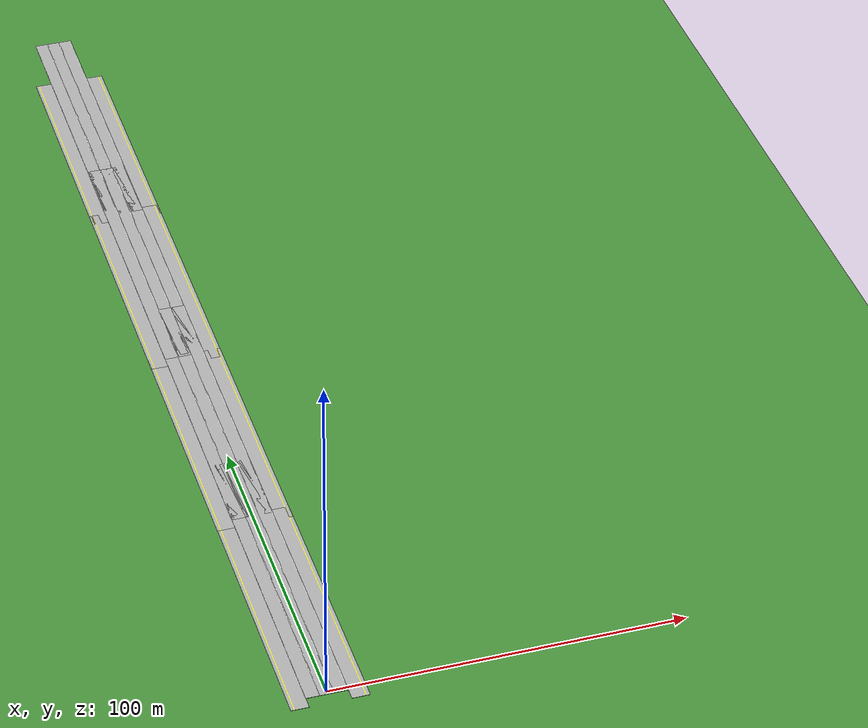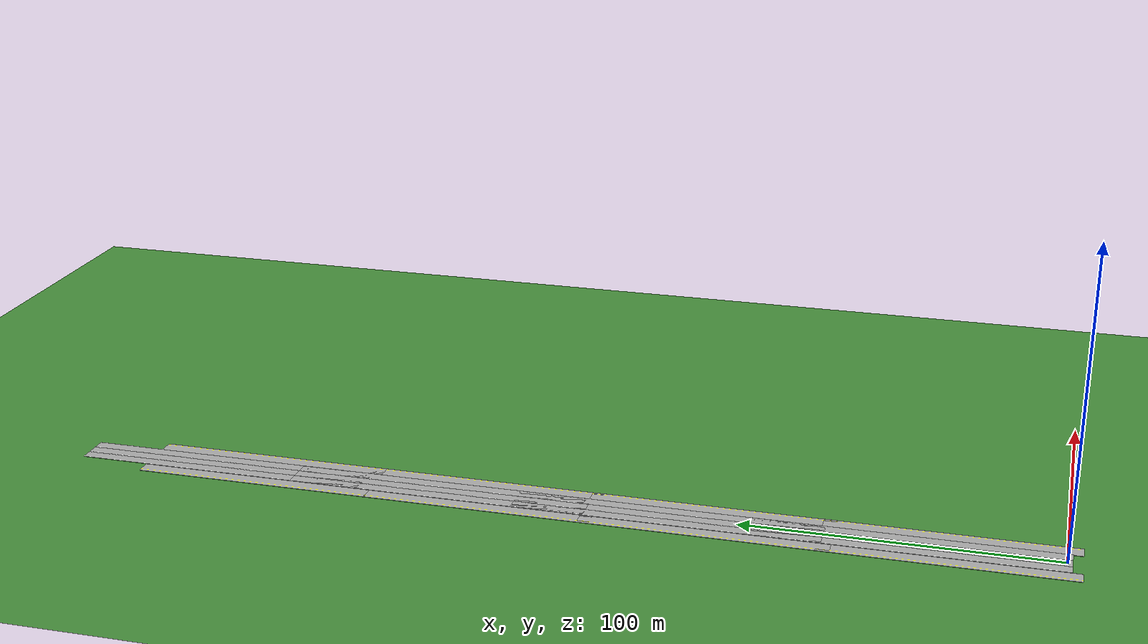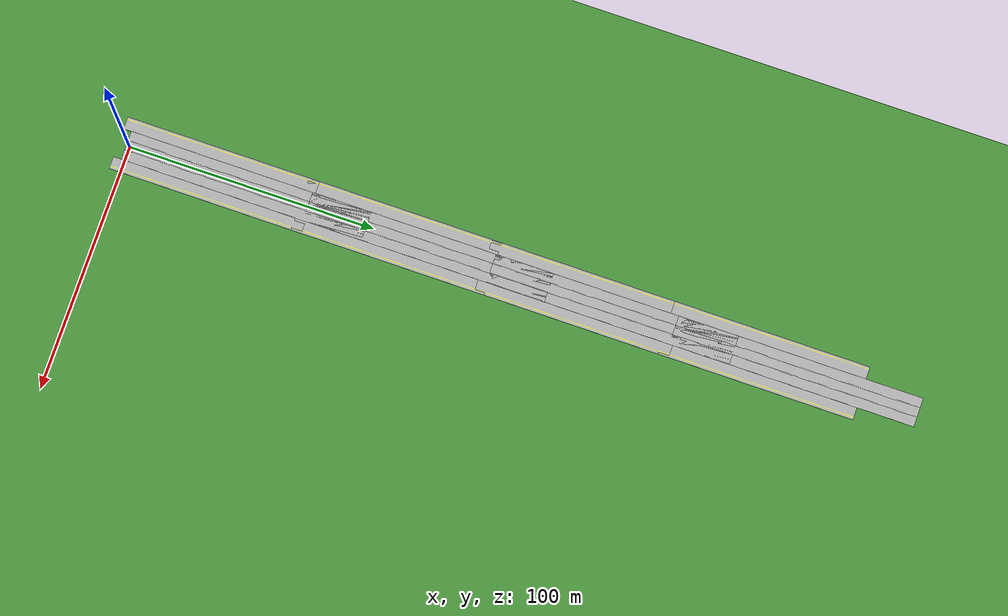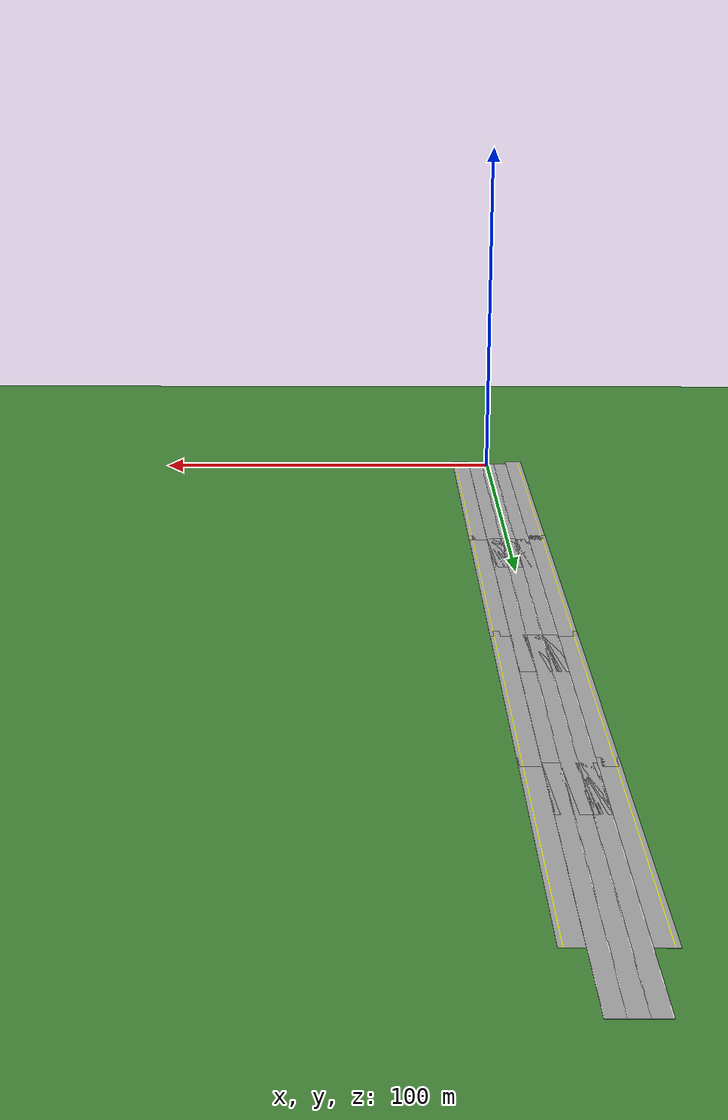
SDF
<sdf version="1.6">
 <world name="default">
  <model name="ground_plane">
   <static>1</static>
   <link name="link">
    <collision name="collision">
     <geometry><plane><normal>0 0 1</normal><size>100 100</size></plane></geometry>
     <surface><friction><ode><mu>100</mu><mu2>50</mu2></ode></friction></surface>
    </collision>
    <visual name="visual">
     <cast_shadows>0</cast_shadows>
     <geometry><plane><normal>0 0 1</normal><size>10000 10000</size></plane></geometry>
     <material>
      <script>
       <uri>model://ds_grass_background/materials/scripts</uri>
       <uri>model://ds_grass_background/materials/textures</uri>
       <name>GrassBackground</name>
      </script>
     </material>
    </visual>
   </link>
  </model>
  <model name="5line">
   <model name="center_road">
    <link name="link_1">
     <pose>4.5e-05 -4.5e-05 0 0 -0 0</pose>
     <inertial>
      <mass>10000</mass>
      <inertia>
       <ixx>0.166667</ixx>
       <ixy>0</ixy>
       <ixz>0</ixz>
       <iyy>0.166667</iyy>
       <iyz>0</iyz>
       <izz>0.166667</izz>
      </inertia>
     </inertial>
     <visual name="visual">
      <geometry>
       <mesh><uri>/home/obin/catkin_ws/src/dbw_runner/models/center.dae</uri><scale>1 1 1</scale></mesh>
      </geometry>
     </visual>
     <collision name="collision">
      <geometry><mesh><uri>/home/obin/catkin_ws/src/dbw_runner/models/center.dae</uri></mesh></geometry>
     </collision>
    </link>
    <static>1</static>
    <pose>-0.726039 9.53969 0 0 -0 0</pose>
   </model>
   <model name="center_road_0">
    <link name="link_1">
     <pose>4.5e-05 -4.5e-05 0 0 -0 0</pose>
     <inertial>
      <mass>10000</mass>
      <inertia>
       <ixx>0.166667</ixx>
       <ixy>0</ixy>
       <ixz>0</ixz>
       <iyy>0.166667</iyy>
       <iyz>0</iyz>
       <izz>0.166667</izz>
      </inertia>
     </inertial>
     <visual name="visual">
      <geometry>
       <mesh><uri>/home/obin/catkin_ws/src/dbw_runner/models/center.dae</uri><scale>1 1 1</scale></mesh>
      </geometry>
     </visual>
     <collision name="collision">
      <geometry><mesh><uri>/home/obin/catkin_ws/src/dbw_runner/models/center.dae</uri></mesh></geometry>
     </collision>
    </link>
    <static>1</static>
    <pose>-4.52219 9.53073 0 0 -0 0</pose>
   </model>
   <model name="center_road_clone">
    <link name="link_1">
     <pose>4.5e-05 -4.5e-05 0 0 -0 0</pose>
     <inertial>
      <mass>10000</mass>
      <inertia>
       <ixx>0.166667</ixx>
       <ixy>0</ixy>
       <ixz>0</ixz>
       <iyy>0.166667</iyy>
       <iyz>0</iyz>
       <izz>0.166667</izz>
      </inertia>
     </inertial>
     <visual name="visual">
      <geometry>
       <mesh><uri>/home/obin/catkin_ws/src/dbw_runner/models/center.dae</uri><scale>1 1 1</scale></mesh>
      </geometry>
     </visual>
     <collision name="collision">
      <geometry><mesh><uri>/home/obin/catkin_ws/src/dbw_runner/models/center.dae</uri></mesh></geometry>
     </collision>
    </link>
    <static>1</static>
    <pose>3.09991 9.52791 0 0 -0 0</pose>
   </model>
   <model name="left_road">
    <link name="link_2">
     <pose>4e-06 -3.2e-05 0 0 -0 0</pose>
     <inertial>
      <mass>10000</mass>
      <inertia>
       <ixx>0.166667</ixx>
       <ixy>0</ixy>
       <ixz>0</ixz>
       <iyy>0.166667</iyy>
       <iyz>0</iyz>
       <izz>0.166667</izz>
      </inertia>
     </inertial>
     <visual name="visual">
      <geometry>
       <mesh><uri>/home/obin/catkin_ws/src/dbw_runner/models/left.dae</uri><scale>1 1 1</scale></mesh>
      </geometry>
     </visual>
     <collision name="collision">
      <geometry><mesh><uri>/home/obin/catkin_ws/src/dbw_runner/models/left.dae</uri></mesh></geometry>
      <surface>
       <friction>
        <ode><mu>1</mu><mu2>1</mu2><fdir1>0 0 0</fdir1><slip1>0</slip1><slip2>0</slip2></ode>
        <torsional>
         <coefficient>1</coefficient>
         <patch_radius>0</patch_radius>
         <surface_radius>0</surface_radius>
         <use_patch_radius>1</use_patch_radius>
         <ode><slip>0</slip></ode>
        </torsional>
       </friction>
       <bounce><restitution_coefficient>0</restitution_coefficient><threshold>1e+06</threshold></bounce>
       <contact>
        <collide_without_contact>0</collide_without_contact>
        <collide_without_contact_bitmask>1</collide_without_contact_bitmask>
        <collide_bitmask>1</collide_bitmask>
        <ode>
         <soft_cfm>0</soft_cfm>
         <soft_erp>0.2</soft_erp>
         <kp>1e+13</kp>
         <kd>1</kd>
         <max_vel>0.01</max_vel>
         <min_depth>0</min_depth>
        </ode>
        <bullet>
         <split_impulse>1</split_impulse>
         <split_impulse_penetration_threshold>-0.01</split_impulse_penetration_threshold>
         <soft_cfm>0</soft_cfm>
         <soft_erp>0.2</soft_erp>
         <kp>1e+13</kp>
         <kd>1</kd>
        </bullet>
       </contact>
      </surface>
     </collision>
    </link>
    <static>1</static>
    <pose>-7.321 11.3862 0 0 -0 0</pose>
   </model>
   <model name="left_road_clone">
    <link name="link_2">
     <pose>4e-06 -3.2e-05 0 0 -0 0</pose>
     <inertial>
      <mass>10000</mass>
      <inertia>
       <ixx>0.166667</ixx>
       <ixy>0</ixy>
       <ixz>0</ixz>
       <iyy>0.166667</iyy>
       <iyz>0</iyz>
       <izz>0.166667</izz>
      </inertia>
     </inertial>
     <visual name="visual">
      <geometry>
       <mesh><uri>/home/obin/catkin_ws/src/dbw_runner/models/left.dae</uri><scale>1 1 1</scale></mesh>
      </geometry>
     </visual>
     <collision name="collision">
      <geometry><mesh><uri>/home/obin/catkin_ws/src/dbw_runner/models/left.dae</uri></mesh></geometry>
      <surface>
       <friction>
        <ode><mu>1</mu><mu2>1</mu2><fdir1>0 0 0</fdir1><slip1>0</slip1><slip2>0</slip2></ode>
        <torsional>
         <coefficient>1</coefficient>
         <patch_radius>0</patch_radius>
         <surface_radius>0</surface_radius>
         <use_patch_radius>1</use_patch_radius>
         <ode><slip>0</slip></ode>
        </torsional>
       </friction>
       <bounce><restitution_coefficient>0</restitution_coefficient><threshold>1e+06</threshold></bounce>
       <contact>
        <collide_without_contact>0</collide_without_contact>
        <collide_without_contact_bitmask>1</collide_without_contact_bitmask>
        <collide_bitmask>1</collide_bitmask>
        <ode>
         <soft_cfm>0</soft_cfm>
         <soft_erp>0.2</soft_erp>
         <kp>1e+13</kp>
         <kd>1</kd>
         <max_vel>0.01</max_vel>
         <min_depth>0</min_depth>
        </ode>
        <bullet>
         <split_impulse>1</split_impulse>
         <split_impulse_penetration_threshold>-0.01</split_impulse_penetration_threshold>
         <soft_cfm>0</soft_cfm>
         <soft_erp>0.2</soft_erp>
         <kp>1e+13</kp>
         <kd>1</kd>
        </bullet>
       </contact>
      </surface>
     </collision>
    </link>
    <static>1</static>
    <pose>7.42076 47.2803 0 0 -0 3.14132</pose>
   </model>
   <static>0</static>
   <pose>-0.165022 5.4558 0 0 -0 0</pose>
  </model>
  <model name="5line_0">
   <model name="center_road">
    <link name="link_1">
     <pose>4.5e-05 -4.5e-05 0 0 -0 0</pose>
     <inertial>
      <mass>10000</mass>
      <inertia>
       <ixx>0.166667</ixx>
       <ixy>0</ixy>
       <ixz>0</ixz>
       <iyy>0.166667</iyy>
       <iyz>0</iyz>
       <izz>0.166667</izz>
      </inertia>
     </inertial>
     <visual name="visual">
      <geometry>
       <mesh><uri>/home/obin/catkin_ws/src/dbw_runner/models/center.dae</uri><scale>1 1 1</scale></mesh>
      </geometry>
     </visual>
     <collision name="collision">
      <geometry><mesh><uri>/home/obin/catkin_ws/src/dbw_runner/models/center.dae</uri></mesh></geometry>
     </collision>
    </link>
    <static>1</static>
    <pose>-0.726039 9.53969 0 0 -0 0</pose>
   </model>
   <model name="center_road_0">
    <link name="link_1">
     <pose>4.5e-05 -4.5e-05 0 0 -0 0</pose>
     <inertial>
      <mass>10000</mass>
      <inertia>
       <ixx>0.166667</ixx>
       <ixy>0</ixy>
       <ixz>0</ixz>
       <iyy>0.166667</iyy>
       <iyz>0</iyz>
       <izz>0.166667</izz>
      </inertia>
     </inertial>
     <visual name="visual">
      <geometry>
       <mesh><uri>/home/obin/catkin_ws/src/dbw_runner/models/center.dae</uri><scale>1 1 1</scale></mesh>
      </geometry>
     </visual>
     <collision name="collision">
      <geometry><mesh><uri>/home/obin/catkin_ws/src/dbw_runner/models/center.dae</uri></mesh></geometry>
     </collision>
    </link>
    <static>1</static>
    <pose>-4.52219 9.53073 0 0 -0 0</pose>
   </model>
   <model name="center_road_clone">
    <link name="link_1">
     <pose>4.5e-05 -4.5e-05 0 0 -0 0</pose>
     <inertial>
      <mass>10000</mass>
      <inertia>
       <ixx>0.166667</ixx>
       <ixy>0</ixy>
       <ixz>0</ixz>
       <iyy>0.166667</iyy>
       <iyz>0</iyz>
       <izz>0.166667</izz>
      </inertia>
     </inertial>
     <visual name="visual">
      <geometry>
       <mesh><uri>/home/obin/catkin_ws/src/dbw_runner/models/center.dae</uri><scale>1 1 1</scale></mesh>
      </geometry>
     </visual>
     <collision name="collision">
      <geometry><mesh><uri>/home/obin/catkin_ws/src/dbw_runner/models/center.dae</uri></mesh></geometry>
     </collision>
    </link>
    <static>1</static>
    <pose>3.09991 9.52791 0 0 -0 0</pose>
   </model>
   <model name="left_road">
    <link name="link_2">
     <pose>4e-06 -3.2e-05 0 0 -0 0</pose>
     <inertial>
      <mass>10000</mass>
      <inertia>
       <ixx>0.166667</ixx>
       <ixy>0</ixy>
       <ixz>0</ixz>
       <iyy>0.166667</iyy>
       <iyz>0</iyz>
       <izz>0.166667</izz>
      </inertia>
     </inertial>
     <visual name="visual">
      <geometry>
       <mesh><uri>/home/obin/catkin_ws/src/dbw_runner/models/left.dae</uri><scale>1 1 1</scale></mesh>
      </geometry>
     </visual>
     <collision name="collision">
      <geometry><mesh><uri>/home/obin/catkin_ws/src/dbw_runner/models/left.dae</uri></mesh></geometry>
      <surface>
       <friction>
        <ode><mu>1</mu><mu2>1</mu2><fdir1>0 0 0</fdir1><slip1>0</slip1><slip2>0</slip2></ode>
        <torsional>
         <coefficient>1</coefficient>
         <patch_radius>0</patch_radius>
         <surface_radius>0</surface_radius>
         <use_patch_radius>1</use_patch_radius>
         <ode><slip>0</slip></ode>
        </torsional>
       </friction>
       <bounce><restitution_coefficient>0</restitution_coefficient><threshold>1e+06</threshold></bounce>
       <contact>
        <collide_without_contact>0</collide_without_contact>
        <collide_without_contact_bitmask>1</collide_without_contact_bitmask>
        <collide_bitmask>1</collide_bitmask>
        <ode>
         <soft_cfm>0</soft_cfm>
         <soft_erp>0.2</soft_erp>
         <kp>1e+13</kp>
         <kd>1</kd>
         <max_vel>0.01</max_vel>
         <min_depth>0</min_depth>
        </ode>
        <bullet>
         <split_impulse>1</split_impulse>
         <split_impulse_penetration_threshold>-0.01</split_impulse_penetration_threshold>
         <soft_cfm>0</soft_cfm>
         <soft_erp>0.2</soft_erp>
         <kp>1e+13</kp>
         <kd>1</kd>
        </bullet>
       </contact>
      </surface>
     </collision>
    </link>
    <static>1</static>
    <pose>-7.321 11.3862 0 0 -0 0</pose>
   </model>
   <model name="left_road_clone">
    <link name="link_2">
     <pose>4e-06 -3.2e-05 0 0 -0 0</pose>
     <inertial>
      <mass>10000</mass>
      <inertia>
       <ixx>0.166667</ixx>
       <ixy>0</ixy>
       <ixz>0</ixz>
       <iyy>0.166667</iyy>
       <iyz>0</iyz>
       <izz>0.166667</izz>
      </inertia>
     </inertial>
     <visual name="visual">
      <geometry>
       <mesh><uri>/home/obin/catkin_ws/src/dbw_runner/models/left.dae</uri><scale>1 1 1</scale></mesh>
      </geometry>
     </visual>
     <collision name="collision">
      <geometry><mesh><uri>/home/obin/catkin_ws/src/dbw_runner/models/left.dae</uri></mesh></geometry>
      <surface>
       <friction>
        <ode><mu>1</mu><mu2>1</mu2><fdir1>0 0 0</fdir1><slip1>0</slip1><slip2>0</slip2></ode>
        <torsional>
         <coefficient>1</coefficient>
         <patch_radius>0</patch_radius>
         <surface_radius>0</surface_radius>
         <use_patch_radius>1</use_patch_radius>
         <ode><slip>0</slip></ode>
        </torsional>
       </friction>
       <bounce><restitution_coefficient>0</restitution_coefficient><threshold>1e+06</threshold></bounce>
       <contact>
        <collide_without_contact>0</collide_without_contact>
        <collide_without_contact_bitmask>1</collide_without_contact_bitmask>
        <collide_bitmask>1</collide_bitmask>
        <ode>
         <soft_cfm>0</soft_cfm>
         <soft_erp>0.2</soft_erp>
         <kp>1e+13</kp>
         <kd>1</kd>
         <max_vel>0.01</max_vel>
         <min_depth>0</min_depth>
        </ode>
        <bullet>
         <split_impulse>1</split_impulse>
         <split_impulse_penetration_threshold>-0.01</split_impulse_penetration_threshold>
         <soft_cfm>0</soft_cfm>
         <soft_erp>0.2</soft_erp>
         <kp>1e+13</kp>
         <kd>1</kd>
        </bullet>
       </contact>
      </surface>
     </collision>
    </link>
    <static>1</static>
    <pose>7.42076 47.2803 0 0 -0 3.14132</pose>
   </model>
   <static>0</static>
   <pose>-0.221 79.8014 0 0 -0 0</pose>
  </model>
  <model name="5line_1">
   <model name="center_road">
    <link name="link_1">
     <pose>4.5e-05 -4.5e-05 0 0 -0 0</pose>
     <inertial>
      <mass>10000</mass>
      <inertia>
       <ixx>0.166667</ixx>
       <ixy>0</ixy>
       <ixz>0</ixz>
       <iyy>0.166667</iyy>
       <iyz>0</iyz>
       <izz>0.166667</izz>
      </inertia>
     </inertial>
     <visual name="visual">
      <geometry>
       <mesh><uri>/home/obin/catkin_ws/src/dbw_runner/models/center.dae</uri><scale>1 1 1</scale></mesh>
      </geometry>
     </visual>
     <collision name="collision">
      <geometry><mesh><uri>/home/obin/catkin_ws/src/dbw_runner/models/center.dae</uri></mesh></geometry>
     </collision>
    </link>
    <static>1</static>
    <pose>-0.726039 9.53969 0 0 -0 0</pose>
   </model>
   <model name="center_road_0">
    <link name="link_1">
     <pose>4.5e-05 -4.5e-05 0 0 -0 0</pose>
     <inertial>
      <mass>10000</mass>
      <inertia>
       <ixx>0.166667</ixx>
       <ixy>0</ixy>
       <ixz>0</ixz>
       <iyy>0.166667</iyy>
       <iyz>0</iyz>
       <izz>0.166667</izz>
      </inertia>
     </inertial>
     <visual name="visual">
      <geometry>
       <mesh><uri>/home/obin/catkin_ws/src/dbw_runner/models/center.dae</uri><scale>1 1 1</scale></mesh>
      </geometry>
     </visual>
     <collision name="collision">
      <geometry><mesh><uri>/home/obin/catkin_ws/src/dbw_runner/models/center.dae</uri></mesh></geometry>
     </collision>
    </link>
    <static>1</static>
    <pose>-4.52219 9.53073 0 0 -0 0</pose>
   </model>
   <model name="center_road_clone">
    <link name="link_1">
     <pose>4.5e-05 -4.5e-05 0 0 -0 0</pose>
     <inertial>
      <mass>10000</mass>
      <inertia>
       <ixx>0.166667</ixx>
       <ixy>0</ixy>
       <ixz>0</ixz>
       <iyy>0.166667</iyy>
       <iyz>0</iyz>
       <izz>0.166667</izz>
      </inertia>
     </inertial>
     <visual name="visual">
      <geometry>
       <mesh><uri>/home/obin/catkin_ws/src/dbw_runner/models/center.dae</uri><scale>1 1 1</scale></mesh>
      </geometry>
     </visual>
     <collision name="collision">
      <geometry><mesh><uri>/home/obin/catkin_ws/src/dbw_runner/models/center.dae</uri></mesh></geometry>
     </collision>
    </link>
    <static>1</static>
    <pose>3.09991 9.52791 0 0 -0 0</pose>
   </model>
   <model name="left_road">
    <link name="link_2">
     <pose>4e-06 -3.2e-05 0 0 -0 0</pose>
     <inertial>
      <mass>10000</mass>
      <inertia>
       <ixx>0.166667</ixx>
       <ixy>0</ixy>
       <ixz>0</ixz>
       <iyy>0.166667</iyy>
       <iyz>0</iyz>
       <izz>0.166667</izz>
      </inertia>
     </inertial>
     <visual name="visual">
      <geometry>
       <mesh><uri>/home/obin/catkin_ws/src/dbw_runner/models/left.dae</uri><scale>1 1 1</scale></mesh>
      </geometry>
     </visual>
     <collision name="collision">
      <geometry><mesh><uri>/home/obin/catkin_ws/src/dbw_runner/models/left.dae</uri></mesh></geometry>
      <surface>
       <friction>
        <ode><mu>1</mu><mu2>1</mu2><fdir1>0 0 0</fdir1><slip1>0</slip1><slip2>0</slip2></ode>
        <torsional>
         <coefficient>1</coefficient>
         <patch_radius>0</patch_radius>
         <surface_radius>0</surface_radius>
         <use_patch_radius>1</use_patch_radius>
         <ode><slip>0</slip></ode>
        </torsional>
       </friction>
       <bounce><restitution_coefficient>0</restitution_coefficient><threshold>1e+06</threshold></bounce>
       <contact>
        <collide_without_contact>0</collide_without_contact>
        <collide_without_contact_bitmask>1</collide_without_contact_bitmask>
        <collide_bitmask>1</collide_bitmask>
        <ode>
         <soft_cfm>0</soft_cfm>
         <soft_erp>0.2</soft_erp>
         <kp>1e+13</kp>
         <kd>1</kd>
         <max_vel>0.01</max_vel>
         <min_depth>0</min_depth>
        </ode>
        <bullet>
         <split_impulse>1</split_impulse>
         <split_impulse_penetration_threshold>-0.01</split_impulse_penetration_threshold>
         <soft_cfm>0</soft_cfm>
         <soft_erp>0.2</soft_erp>
         <kp>1e+13</kp>
         <kd>1</kd>
        </bullet>
       </contact>
      </surface>
     </collision>
    </link>
    <static>1</static>
    <pose>-7.321 11.3862 0 0 -0 0</pose>
   </model>
   <model name="left_road_clone">
    <link name="link_2">
     <pose>4e-06 -3.2e-05 0 0 -0 0</pose>
     <inertial>
      <mass>10000</mass>
      <inertia>
       <ixx>0.166667</ixx>
       <ixy>0</ixy>
       <ixz>0</ixz>
       <iyy>0.166667</iyy>
       <iyz>0</iyz>
       <izz>0.166667</izz>
      </inertia>
     </inertial>
     <visual name="visual">
      <geometry>
       <mesh><uri>/home/obin/catkin_ws/src/dbw_runner/models/left.dae</uri><scale>1 1 1</scale></mesh>
      </geometry>
     </visual>
     <collision name="collision">
      <geometry><mesh><uri>/home/obin/catkin_ws/src/dbw_runner/models/left.dae</uri></mesh></geometry>
      <surface>
       <friction>
        <ode><mu>1</mu><mu2>1</mu2><fdir1>0 0 0</fdir1><slip1>0</slip1><slip2>0</slip2></ode>
        <torsional>
         <coefficient>1</coefficient>
         <patch_radius>0</patch_radius>
         <surface_radius>0</surface_radius>
         <use_patch_radius>1</use_patch_radius>
         <ode><slip>0</slip></ode>
        </torsional>
       </friction>
       <bounce><restitution_coefficient>0</restitution_coefficient><threshold>1e+06</threshold></bounce>
       <contact>
        <collide_without_contact>0</collide_without_contact>
        <collide_without_contact_bitmask>1</collide_without_contact_bitmask>
        <collide_bitmask>1</collide_bitmask>
        <ode>
         <soft_cfm>0</soft_cfm>
         <soft_erp>0.2</soft_erp>
         <kp>1e+13</kp>
         <kd>1</kd>
         <max_vel>0.01</max_vel>
         <min_depth>0</min_depth>
        </ode>
        <bullet>
         <split_impulse>1</split_impulse>
         <split_impulse_penetration_threshold>-0.01</split_impulse_penetration_threshold>
         <soft_cfm>0</soft_cfm>
         <soft_erp>0.2</soft_erp>
         <kp>1e+13</kp>
         <kd>1</kd>
        </bullet>
       </contact>
      </surface>
     </collision>
    </link>
    <static>1</static>
    <pose>7.42076 47.2803 0 0 -0 3.14132</pose>
   </model>
   <static>0</static>
   <pose>-0.248587 154.6 0 0 -0 0</pose>
  </model>
  <model name="5line_2">
   <model name="center_road">
    <link name="link_1">
     <pose>4.5e-05 -4.5e-05 0 0 -0 0</pose>
     <inertial>
      <mass>10000</mass>
      <inertia>
       <ixx>0.166667</ixx>
       <ixy>0</ixy>
       <ixz>0</ixz>
       <iyy>0.166667</iyy>
       <iyz>0</iyz>
       <izz>0.166667</izz>
      </inertia>
     </inertial>
     <visual name="visual">
      <geometry>
       <mesh><uri>/home/obin/catkin_ws/src/dbw_runner/models/center.dae</uri><scale>1 1 1</scale></mesh>
      </geometry>
     </visual>
     <collision name="collision">
      <geometry><mesh><uri>/home/obin/catkin_ws/src/dbw_runner/models/center.dae</uri></mesh></geometry>
     </collision>
    </link>
    <static>1</static>
    <pose>-0.726039 9.53969 0 0 -0 0</pose>
   </model>
   <model name="center_road_0">
    <link name="link_1">
     <pose>4.5e-05 -4.5e-05 0 0 -0 0</pose>
     <inertial>
      <mass>10000</mass>
      <inertia>
       <ixx>0.166667</ixx>
       <ixy>0</ixy>
       <ixz>0</ixz>
       <iyy>0.166667</iyy>
       <iyz>0</iyz>
       <izz>0.166667</izz>
      </inertia>
     </inertial>
     <visual name="visual">
      <geometry>
       <mesh><uri>/home/obin/catkin_ws/src/dbw_runner/models/center.dae</uri><scale>1 1 1</scale></mesh>
      </geometry>
     </visual>
     <collision name="collision">
      <geometry><mesh><uri>/home/obin/catkin_ws/src/dbw_runner/models/center.dae</uri></mesh></geometry>
     </collision>
    </link>
    <static>1</static>
    <pose>-4.52219 9.53073 0 0 -0 0</pose>
   </model>
   <model name="center_road_clone">
    <link name="link_1">
     <pose>4.5e-05 -4.5e-05 0 0 -0 0</pose>
     <inertial>
      <mass>10000</mass>
      <inertia>
       <ixx>0.166667</ixx>
       <ixy>0</ixy>
       <ixz>0</ixz>
       <iyy>0.166667</iyy>
       <iyz>0</iyz>
       <izz>0.166667</izz>
      </inertia>
     </inertial>
     <visual name="visual">
      <geometry>
       <mesh><uri>/home/obin/catkin_ws/src/dbw_runner/models/center.dae</uri><scale>1 1 1</scale></mesh>
      </geometry>
     </visual>
     <collision name="collision">
      <geometry><mesh><uri>/home/obin/catkin_ws/src/dbw_runner/models/center.dae</uri></mesh></geometry>
     </collision>
    </link>
    <static>1</static>
    <pose>3.09991 9.52791 0 0 -0 0</pose>
   </model>
   <model name="left_road">
    <link name="link_2">
     <pose>4e-06 -3.2e-05 0 0 -0 0</pose>
     <inertial>
      <mass>10000</mass>
      <inertia>
       <ixx>0.166667</ixx>
       <ixy>0</ixy>
       <ixz>0</ixz>
       <iyy>0.166667</iyy>
       <iyz>0</iyz>
       <izz>0.166667</izz>
      </inertia>
     </inertial>
     <visual name="visual">
      <geometry>
       <mesh><uri>/home/obin/catkin_ws/src/dbw_runner/models/left.dae</uri><scale>1 1 1</scale></mesh>
      </geometry>
     </visual>
     <collision name="collision">
      <geometry><mesh><uri>/home/obin/catkin_ws/src/dbw_runner/models/left.dae</uri></mesh></geometry>
      <surface>
       <friction>
        <ode><mu>1</mu><mu2>1</mu2><fdir1>0 0 0</fdir1><slip1>0</slip1><slip2>0</slip2></ode>
        <torsional>
         <coefficient>1</coefficient>
         <patch_radius>0</patch_radius>
         <surface_radius>0</surface_radius>
         <use_patch_radius>1</use_patch_radius>
         <ode><slip>0</slip></ode>
        </torsional>
       </friction>
       <bounce><restitution_coefficient>0</restitution_coefficient><threshold>1e+06</threshold></bounce>
       <contact>
        <collide_without_contact>0</collide_without_contact>
        <collide_without_contact_bitmask>1</collide_without_contact_bitmask>
        <collide_bitmask>1</collide_bitmask>
        <ode>
         <soft_cfm>0</soft_cfm>
         <soft_erp>0.2</soft_erp>
         <kp>1e+13</kp>
         <kd>1</kd>
         <max_vel>0.01</max_vel>
         <min_depth>0</min_depth>
        </ode>
        <bullet>
         <split_impulse>1</split_impulse>
         <split_impulse_penetration_threshold>-0.01</split_impulse_penetration_threshold>
         <soft_cfm>0</soft_cfm>
         <soft_erp>0.2</soft_erp>
         <kp>1e+13</kp>
         <kd>1</kd>
        </bullet>
       </contact>
      </surface>
     </collision>
    </link>
    <static>1</static>
    <pose>-7.321 11.3862 0 0 -0 0</pose>
   </model>
   <model name="left_road_clone">
    <link name="link_2">
     <pose>4e-06 -3.2e-05 0 0 -0 0</pose>
     <inertial>
      <mass>10000</mass>
      <inertia>
       <ixx>0.166667</ixx>
       <ixy>0</ixy>
       <ixz>0</ixz>
       <iyy>0.166667</iyy>
       <iyz>0</iyz>
       <izz>0.166667</izz>
      </inertia>
     </inertial>
     <visual name="visual">
      <geometry>
       <mesh><uri>/home/obin/catkin_ws/src/dbw_runner/models/left.dae</uri><scale>1 1 1</scale></mesh>
      </geometry>
     </visual>
     <collision name="collision">
      <geometry><mesh><uri>/home/obin/catkin_ws/src/dbw_runner/models/left.dae</uri></mesh></geometry>
      <surface>
       <friction>
        <ode><mu>1</mu><mu2>1</mu2><fdir1>0 0 0</fdir1><slip1>0</slip1><slip2>0</slip2></ode>
        <torsional>
         <coefficient>1</coefficient>
         <patch_radius>0</patch_radius>
         <surface_radius>0</surface_radius>
         <use_patch_radius>1</use_patch_radius>
         <ode><slip>0</slip></ode>
        </torsional>
       </friction>
       <bounce><restitution_coefficient>0</restitution_coefficient><threshold>1e+06</threshold></bounce>
       <contact>
        <collide_without_contact>0</collide_without_contact>
        <collide_without_contact_bitmask>1</collide_without_contact_bitmask>
        <collide_bitmask>1</collide_bitmask>
        <ode>
         <soft_cfm>0</soft_cfm>
         <soft_erp>0.2</soft_erp>
         <kp>1e+13</kp>
         <kd>1</kd>
         <max_vel>0.01</max_vel>
         <min_depth>0</min_depth>
        </ode>
        <bullet>
         <split_impulse>1</split_impulse>
         <split_impulse_penetration_threshold>-0.01</split_impulse_penetration_threshold>
         <soft_cfm>0</soft_cfm>
         <soft_erp>0.2</soft_erp>
         <kp>1e+13</kp>
         <kd>1</kd>
        </bullet>
       </contact>
      </surface>
     </collision>
    </link>
    <static>1</static>
    <pose>7.42076 47.2803 0 0 -0 3.14132</pose>
   </model>
   <static>0</static>
   <pose>-0.268292 228.815 0 0 -0 0</pose>
  </model>
 </world>
</sdf>
